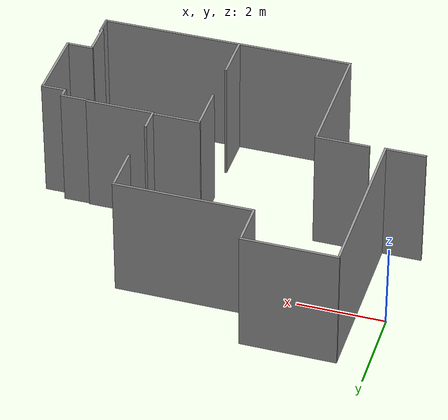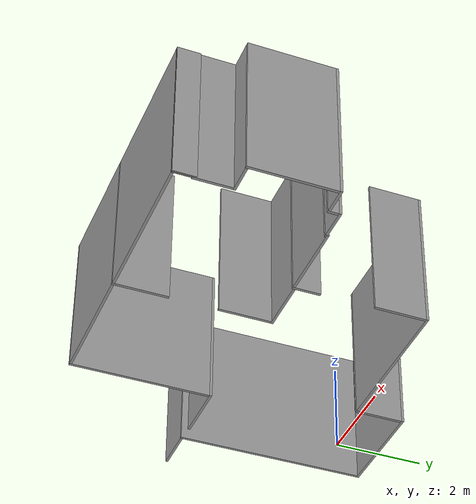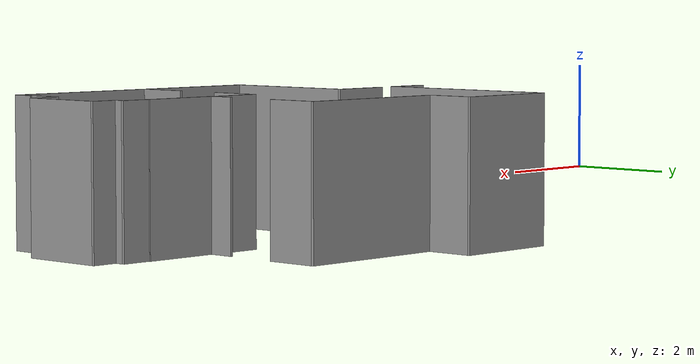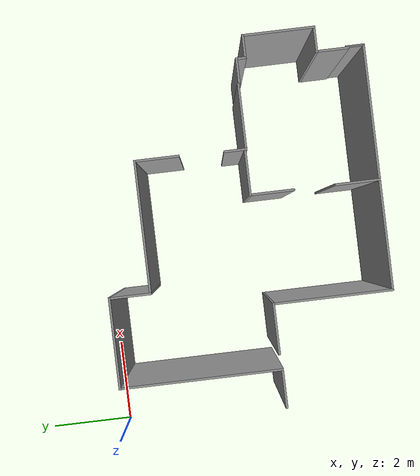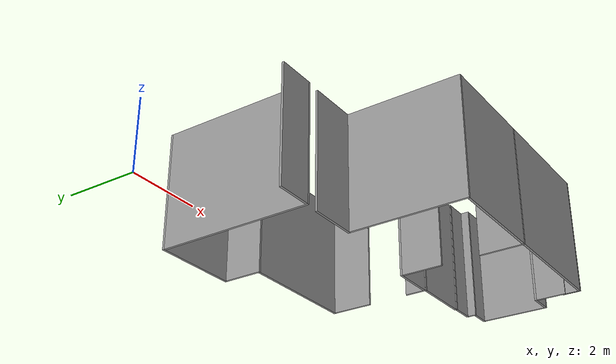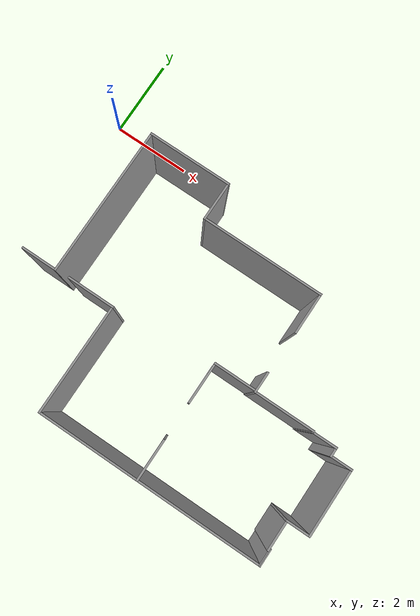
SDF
<?xml version="1.0" ?>
<sdf version="1.4">
  <model name="RockinCamp">
    <static>1</static>
    <link name="Wall_0">
      <collision name="Wall_0_Collision">
        <geometry>
          <box>
            <size>2.24100 0.05400 3.00000</size>
          </box>
        </geometry>
        <pose>2.20050 -0.05400 0 0 0 0.00000</pose>
      </collision>
      <visual name="Wall_0_Visual">
        <geometry>
          <box>
            <size>2.24100 0.05400 3.00000</size>
          </box>
        </geometry>
        <material>
          <script>
            <uri>file://media/materials/scripts/gazebo.material</uri>
            <name>Gazebo/Grey</name>
          </script>
        </material>
        <pose>2.20050 -0.05400 0 0 0 0.00000</pose>
      </visual>
    </link>
    <link name="Wall_1">
      <collision name="Wall_1_Collision">
        <geometry>
          <box>
            <size>0.05400 3.94200 3.00000</size>
          </box>
        </geometry>
        <pose>1.10700 -2.05200 0 0 0 0.00000</pose>
      </collision>
      <visual name="Wall_1_Visual">
        <geometry>
          <box>
            <size>0.05400 3.94200 3.00000</size>
          </box>
        </geometry>
        <material>
          <script>
            <uri>file://media/materials/scripts/gazebo.material</uri>
            <name>Gazebo/Grey</name>
          </script>
        </material>
        <pose>1.10700 -2.05200 0 0 0 0.00000</pose>
      </visual>
    </link>
    <link name="Wall_2">
      <collision name="Wall_2_Collision">
        <geometry>
          <box>
            <size>0.05400 0.99900 3.00000</size>
          </box>
        </geometry>
        <pose>3.29400 -0.58050 0 0 0 0.00000</pose>
      </collision>
      <visual name="Wall_2_Visual">
        <geometry>
          <box>
            <size>0.05400 0.99900 3.00000</size>
          </box>
        </geometry>
        <material>
          <script>
            <uri>file://media/materials/scripts/gazebo.material</uri>
            <name>Gazebo/Grey</name>
          </script>
        </material>
        <pose>3.29400 -0.58050 0 0 0 0.00000</pose>
      </visual>
    </link>
    <link name="Wall_3">
      <collision name="Wall_3_Collision">
        <geometry>
          <box>
            <size>3.21300 0.05400 3.00000</size>
          </box>
        </geometry>
        <pose>4.92750 -1.05300 0 0 0 0.00000</pose>
      </collision>
      <visual name="Wall_3_Visual">
        <geometry>
          <box>
            <size>3.21300 0.05400 3.00000</size>
          </box>
        </geometry>
        <material>
          <script>
            <uri>file://media/materials/scripts/gazebo.material</uri>
            <name>Gazebo/Grey</name>
          </script>
        </material>
        <pose>4.92750 -1.05300 0 0 0 0.00000</pose>
      </visual>
    </link>
    <link name="Wall_4">
      <collision name="Wall_4_Collision">
        <geometry>
          <box>
            <size>0.05400 1.05300 3.00000</size>
          </box>
        </geometry>
        <pose>6.50700 -1.60650 0 0 0 0.00000</pose>
      </collision>
      <visual name="Wall_4_Visual">
        <geometry>
          <box>
            <size>0.05400 1.05300 3.00000</size>
          </box>
        </geometry>
        <material>
          <script>
            <uri>file://media/materials/scripts/gazebo.material</uri>
            <name>Gazebo/Grey</name>
          </script>
        </material>
        <pose>6.50700 -1.60650 0 0 0 0.00000</pose>
      </visual>
    </link>
    <link name="Wall_5">
      <collision name="Wall_5_Collision">
        <geometry>
          <box>
            <size>0.05400 0.56700 3.00000</size>
          </box>
        </geometry>
        <pose>6.48000 -3.49650 0 0 0 0.00000</pose>
      </collision>
      <visual name="Wall_5_Visual">
        <geometry>
          <box>
            <size>0.05400 0.56700 3.00000</size>
          </box>
        </geometry>
        <material>
          <script>
            <uri>file://media/materials/scripts/gazebo.material</uri>
            <name>Gazebo/Grey</name>
          </script>
        </material>
        <pose>6.48000 -3.49650 0 0 0 0.00000</pose>
      </visual>
    </link>
    <link name="Wall_6">
      <collision name="Wall_6_Collision">
        <geometry>
          <box>
            <size>1.10700 0.05400 3.00000</size>
          </box>
        </geometry>
        <pose>5.89950 -3.72600 0 0 0 0.00000</pose>
      </collision>
      <visual name="Wall_6_Visual">
        <geometry>
          <box>
            <size>1.10700 0.05400 3.00000</size>
          </box>
        </geometry>
        <material>
          <script>
            <uri>file://media/materials/scripts/gazebo.material</uri>
            <name>Gazebo/Grey</name>
          </script>
        </material>
        <pose>5.89950 -3.72600 0 0 0 0.00000</pose>
      </visual>
    </link>
    <link name="Wall_7">
      <collision name="Wall_7_Collision">
        <geometry>
          <box>
            <size>1.56600 0.05400 3.00000</size>
          </box>
        </geometry>
        <pose>7.29000 -3.75300 0 0 0 0.00000</pose>
      </collision>
      <visual name="Wall_7_Visual">
        <geometry>
          <box>
            <size>1.56600 0.05400 3.00000</size>
          </box>
        </geometry>
        <material>
          <script>
            <uri>file://media/materials/scripts/gazebo.material</uri>
            <name>Gazebo/Grey</name>
          </script>
        </material>
        <pose>7.29000 -3.75300 0 0 0 0.00000</pose>
      </visual>
    </link>
    <link name="Wall_8">
      <collision name="Wall_8_Collision">
        <geometry>
          <box>
            <size>0.05400 1.05300 3.00000</size>
          </box>
        </geometry>
        <pose>5.37300 -4.27950 0 0 0 0.00000</pose>
      </collision>
      <visual name="Wall_8_Visual">
        <geometry>
          <box>
            <size>0.05400 1.05300 3.00000</size>
          </box>
        </geometry>
        <material>
          <script>
            <uri>file://media/materials/scripts/gazebo.material</uri>
            <name>Gazebo/Grey</name>
          </script>
        </material>
        <pose>5.37300 -4.27950 0 0 0 0.00000</pose>
      </visual>
    </link>
    <link name="Wall_9">
      <collision name="Wall_9_Collision">
        <geometry>
          <box>
            <size>0.62100 0.05400 3.00000</size>
          </box>
        </geometry>
        <pose>8.38350 -3.78000 0 0 0 0.00000</pose>
      </collision>
      <visual name="Wall_9_Visual">
        <geometry>
          <box>
            <size>0.62100 0.05400 3.00000</size>
          </box>
        </geometry>
        <material>
          <script>
            <uri>file://media/materials/scripts/gazebo.material</uri>
            <name>Gazebo/Grey</name>
          </script>
        </material>
        <pose>8.38350 -3.78000 0 0 0 0.00000</pose>
      </visual>
    </link>
    <link name="Wall_10">
      <collision name="Wall_10_Collision">
        <geometry>
          <box>
            <size>0.05400 0.02700 3.00000</size>
          </box>
        </geometry>
        <pose>8.04600 -3.79350 0 0 0 0.00000</pose>
      </collision>
      <visual name="Wall_10_Visual">
        <geometry>
          <box>
            <size>0.05400 0.02700 3.00000</size>
          </box>
        </geometry>
        <material>
          <script>
            <uri>file://media/materials/scripts/gazebo.material</uri>
            <name>Gazebo/Grey</name>
          </script>
        </material>
        <pose>8.04600 -3.79350 0 0 0 0.00000</pose>
      </visual>
    </link>
    <link name="Wall_11">
      <collision name="Wall_11_Collision">
        <geometry>
          <box>
            <size>0.05400 0.21600 3.00000</size>
          </box>
        </geometry>
        <pose>8.66700 -3.91500 0 0 0 0.00000</pose>
      </collision>
      <visual name="Wall_11_Visual">
        <geometry>
          <box>
            <size>0.05400 0.21600 3.00000</size>
          </box>
        </geometry>
        <material>
          <script>
            <uri>file://media/materials/scripts/gazebo.material</uri>
            <name>Gazebo/Grey</name>
          </script>
        </material>
        <pose>8.66700 -3.91500 0 0 0 0.00000</pose>
      </visual>
    </link>
    <link name="Wall_12">
      <collision name="Wall_12_Collision">
        <geometry>
          <box>
            <size>1.26900 0.05400 3.00000</size>
          </box>
        </geometry>
        <pose>2.09250 -3.96900 0 0 0 0.00000</pose>
      </collision>
      <visual name="Wall_12_Visual">
        <geometry>
          <box>
            <size>1.26900 0.05400 3.00000</size>
          </box>
        </geometry>
        <material>
          <script>
            <uri>file://media/materials/scripts/gazebo.material</uri>
            <name>Gazebo/Grey</name>
          </script>
        </material>
        <pose>2.09250 -3.96900 0 0 0 0.00000</pose>
      </visual>
    </link>
    <link name="Wall_13">
      <collision name="Wall_13_Collision">
        <geometry>
          <box>
            <size>0.91800 0.05400 3.00000</size>
          </box>
        </geometry>
        <pose>0.62100 -3.99600 0 0 0 0.00000</pose>
      </collision>
      <visual name="Wall_13_Visual">
        <geometry>
          <box>
            <size>0.91800 0.05400 3.00000</size>
          </box>
        </geometry>
        <material>
          <script>
            <uri>file://media/materials/scripts/gazebo.material</uri>
            <name>Gazebo/Grey</name>
          </script>
        </material>
        <pose>0.62100 -3.99600 0 0 0 0.00000</pose>
      </visual>
    </link>
    <link name="Wall_14">
      <collision name="Wall_14_Collision">
        <geometry>
          <box>
            <size>0.54000 0.05400 3.00000</size>
          </box>
        </geometry>
        <pose>8.96400 -3.99600 0 0 0 0.00000</pose>
      </collision>
      <visual name="Wall_14_Visual">
        <geometry>
          <box>
            <size>0.54000 0.05400 3.00000</size>
          </box>
        </geometry>
        <material>
          <script>
            <uri>file://media/materials/scripts/gazebo.material</uri>
            <name>Gazebo/Grey</name>
          </script>
        </material>
        <pose>8.96400 -3.99600 0 0 0 0.00000</pose>
      </visual>
    </link>
    <link name="Wall_15">
      <collision name="Wall_15_Collision">
        <geometry>
          <box>
            <size>0.05400 2.88900 3.00000</size>
          </box>
        </geometry>
        <pose>2.70000 -5.44050 0 0 0 0.00000</pose>
      </collision>
      <visual name="Wall_15_Visual">
        <geometry>
          <box>
            <size>0.05400 2.88900 3.00000</size>
          </box>
        </geometry>
        <material>
          <script>
            <uri>file://media/materials/scripts/gazebo.material</uri>
            <name>Gazebo/Grey</name>
          </script>
        </material>
        <pose>2.70000 -5.44050 0 0 0 0.00000</pose>
      </visual>
    </link>
    <link name="Wall_16">
      <collision name="Wall_16_Collision">
        <geometry>
          <box>
            <size>0.05400 1.72800 3.00000</size>
          </box>
        </geometry>
        <pose>9.20700 -4.88700 0 0 0 0.00000</pose>
      </collision>
      <visual name="Wall_16_Visual">
        <geometry>
          <box>
            <size>0.05400 1.72800 3.00000</size>
          </box>
        </geometry>
        <material>
          <script>
            <uri>file://media/materials/scripts/gazebo.material</uri>
            <name>Gazebo/Grey</name>
          </script>
        </material>
        <pose>9.20700 -4.88700 0 0 0 0.00000</pose>
      </visual>
    </link>
    <link name="Wall_17">
      <collision name="Wall_17_Collision">
        <geometry>
          <box>
            <size>0.59400 0.05400 3.00000</size>
          </box>
        </geometry>
        <pose>8.88300 -5.72400 0 0 0 0.00000</pose>
      </collision>
      <visual name="Wall_17_Visual">
        <geometry>
          <box>
            <size>0.59400 0.05400 3.00000</size>
          </box>
        </geometry>
        <material>
          <script>
            <uri>file://media/materials/scripts/gazebo.material</uri>
            <name>Gazebo/Grey</name>
          </script>
        </material>
        <pose>8.88300 -5.72400 0 0 0 0.00000</pose>
      </visual>
    </link>
    <link name="Wall_18">
      <collision name="Wall_18_Collision">
        <geometry>
          <box>
            <size>0.05400 0.75600 3.00000</size>
          </box>
        </geometry>
        <pose>8.61300 -6.12900 0 0 0 0.00000</pose>
      </collision>
      <visual name="Wall_18_Visual">
        <geometry>
          <box>
            <size>0.05400 0.75600 3.00000</size>
          </box>
        </geometry>
        <material>
          <script>
            <uri>file://media/materials/scripts/gazebo.material</uri>
            <name>Gazebo/Grey</name>
          </script>
        </material>
        <pose>8.61300 -6.12900 0 0 0 0.00000</pose>
      </visual>
    </link>
    <link name="Wall_19">
      <collision name="Wall_19_Collision">
        <geometry>
          <box>
            <size>0.05400 1.10700 3.00000</size>
          </box>
        </geometry>
        <pose>5.37300 -6.33150 0 0 0 0.00000</pose>
      </collision>
      <visual name="Wall_19_Visual">
        <geometry>
          <box>
            <size>0.05400 1.10700 3.00000</size>
          </box>
        </geometry>
        <material>
          <script>
            <uri>file://media/materials/scripts/gazebo.material</uri>
            <name>Gazebo/Grey</name>
          </script>
        </material>
        <pose>5.37300 -6.33150 0 0 0 0.00000</pose>
      </visual>
    </link>
    <link name="Wall_20">
      <collision name="Wall_20_Collision">
        <geometry>
          <box>
            <size>0.02700 0.45900 3.00000</size>
          </box>
        </geometry>
        <pose>8.65350 -6.65550 0 0 0 0.00000</pose>
      </collision>
      <visual name="Wall_20_Visual">
        <geometry>
          <box>
            <size>0.02700 0.45900 3.00000</size>
          </box>
        </geometry>
        <material>
          <script>
            <uri>file://media/materials/scripts/gazebo.material</uri>
            <name>Gazebo/Grey</name>
          </script>
        </material>
        <pose>8.65350 -6.65550 0 0 0 0.00000</pose>
      </visual>
    </link>
    <link name="Wall_21">
      <collision name="Wall_21_Collision">
        <geometry>
          <box>
            <size>0.02700 0.37800 3.00000</size>
          </box>
        </geometry>
        <pose>8.62650 -6.69600 0 0 0 0.00000</pose>
      </collision>
      <visual name="Wall_21_Visual">
        <geometry>
          <box>
            <size>0.02700 0.37800 3.00000</size>
          </box>
        </geometry>
        <material>
          <script>
            <uri>file://media/materials/scripts/gazebo.material</uri>
            <name>Gazebo/Grey</name>
          </script>
        </material>
        <pose>8.62650 -6.69600 0 0 0 0.00000</pose>
      </visual>
    </link>
    <link name="Wall_22">
      <collision name="Wall_22_Collision">
        <geometry>
          <box>
            <size>2.61900 0.05400 3.00000</size>
          </box>
        </geometry>
        <pose>4.03650 -6.85800 0 0 0 0.00000</pose>
      </collision>
      <visual name="Wall_22_Visual">
        <geometry>
          <box>
            <size>2.61900 0.05400 3.00000</size>
          </box>
        </geometry>
        <material>
          <script>
            <uri>file://media/materials/scripts/gazebo.material</uri>
            <name>Gazebo/Grey</name>
          </script>
        </material>
        <pose>4.03650 -6.85800 0 0 0 0.00000</pose>
      </visual>
    </link>
    <link name="Wall_23">
      <collision name="Wall_23_Collision">
        <geometry>
          <box>
            <size>3.21300 0.05400 3.00000</size>
          </box>
        </geometry>
        <pose>7.00650 -6.85800 0 0 0 0.00000</pose>
      </collision>
      <visual name="Wall_23_Visual">
        <geometry>
          <box>
            <size>3.21300 0.05400 3.00000</size>
          </box>
        </geometry>
        <material>
          <script>
            <uri>file://media/materials/scripts/gazebo.material</uri>
            <name>Gazebo/Grey</name>
          </script>
        </material>
        <pose>7.00650 -6.85800 0 0 0 0.00000</pose>
      </visual>
    </link>
  </model>
</sdf>
